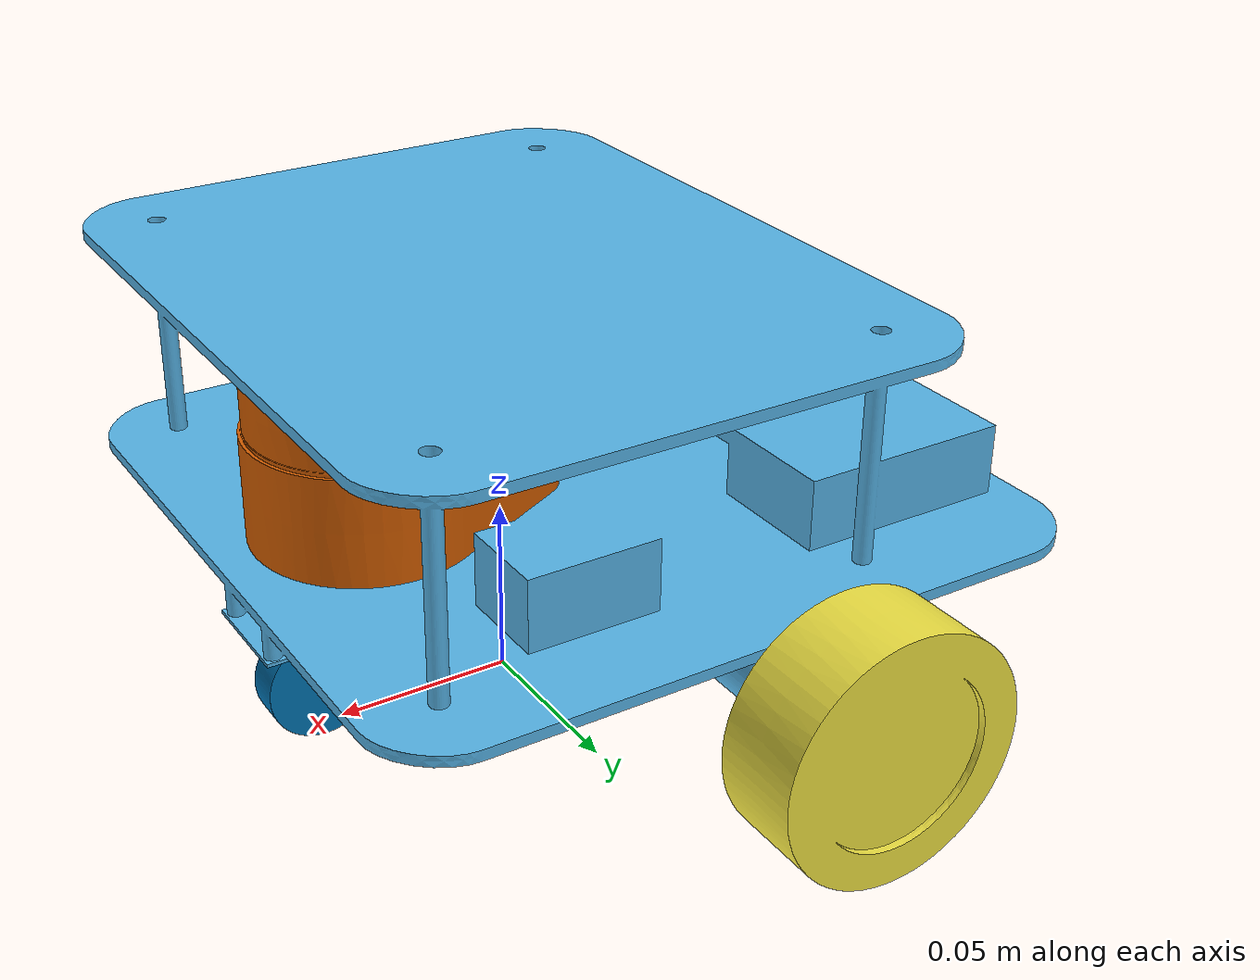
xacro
<?xml version="1.0"?>

<robot name="roverlad" xmlns:xacro="http://ros.org/wiki/xacro">

  <!-- Load Simulated or Real Hardware Interfaces -->
  <xacro:arg name="is_sim" default="false"/>

  <xacro:include filename="$(find roverlad_description)/urdf/roverlad_gazebo.xacro" />

  <xacro:include filename="$(find roverlad_description)/urdf/roverlad_ros2_control.xacro" />

  <link name="base_footprint"/>

  <link name="base_link">
    <inertial>
      <origin xyz="0 0 0" rpy="0.0 0.25 0.3" />
      <mass value="8.2573504e-01"/>
      <inertia ixx="2.2124416e-02" ixy="-1.2294101e-04" ixz="3.4938785e-04"
               iyy="2.1193702e-02" iyz="-5.0120904e-05"
               izz="2.0064271e-02" />
    </inertial>
    <visual>
      <origin xyz="0 0 -0.04" rpy="0 0 0" />
      <geometry>
        <mesh filename="package://roverlad_description/meshes/MainFrame.stl" />
      </geometry>
    </visual>
    <collision>
      <origin xyz="0 0 -0.04" rpy="0 0 0" />
      <geometry>
        <mesh filename="package://roverlad_description/meshes/MainFrame.stl" />
      </geometry>
    </collision>
  </link>

  <joint name="base_joint" type="fixed">
    <parent link="base_footprint"/>
    <child link="base_link" />
    <origin xyz="0 0 0.04" rpy="0 0 0"/>
  </joint>

  <link name="wheel_right_link">
    <inertial>
      <origin xyz="0 -0.014 0" rpy="0 0 0" />
      <mass value="0.0530086090966721" />
      <inertia ixx="1.88176298336665E-05" ixy="-4.8444933029987E-10" ixz="1.88163708851143E-08"
               iyy="3.11510738647764E-05" iyz="-6.93560663069607E-11"
               izz="1.8801969558182E-05" />
    </inertial>
    <visual>
      <origin xyz="0.034 0.1 -0.0343" rpy="0 0 0" />
      <geometry>
        <mesh filename="package://roverlad_description/meshes/Wheel_L.stl" />
      </geometry>
    </visual>
    <collision>
      <origin xyz="0.034 0.1 -0.0343" rpy="0 0 0" />
      <geometry>
        <sphere radius="0.033"/>
      </geometry>
    </collision>
  </link>

  <joint name="wheel_right_joint" type="continuous">
    <origin xyz="-0.034 -0.1 -0.005" rpy="0 0 0" />
    <parent link="base_link" />
    <child link="wheel_right_link" />
    <axis xyz="0 1 0" />
  </joint>

  <link name="wheel_left_link">
    <inertial>
      <origin xyz="0 0.014 0" rpy="0 0 0" />
      <mass value="0.0530086043217644" />
      <inertia ixx="1.8792911368909E-05"  ixy="3.31256392204584E-10" ixz="-1.14082001662767E-08"
               iyy="3.11510738759073E-05" iyz="-3.60499245082192E-10"
               izz="1.88266886146847E-05" />
    </inertial>
    <visual>
      <origin xyz="0.034 -0.1 -0.0343" rpy="0 0 0" />
      <geometry>
        <mesh filename="package://roverlad_description/meshes/Wheel_R.stl" />
      </geometry>
    </visual>
    <collision>
      <origin xyz="0.034 -0.1 -0.0343" rpy="0 0 0" />
      <geometry>
        <sphere radius="0.033"/>
      </geometry>
    </collision>
  </link>

  <joint name="wheel_left_joint" type="continuous">
    <origin xyz="-0.034 0.1 -0.005" rpy="0 0 0" />
    <parent link="base_link" />
    <child link="wheel_left_link" />
    <axis xyz="0 1 0" />
  </joint>

  <link name="caster_front_link">
    <inertial>
      <origin xyz="3.89968128948481E-07 2.40073004698083E-07 0.00219173397061506" rpy="0 0 0" />
      <mass value="1.44379265037903E-06" />
      <inertia ixx="7.23075276010246E-11" ixy="-6.10956883467859E-16" ixz="2.22849693525031E-15"
               iyy="3.8713793085917E-11"  iyz="2.93909858781952E-15"
               izz="1.00967486676306E-10" />
    </inertial>
    <visual>
      <origin xyz="-0.055 0 -0.015" rpy="0 0 0" />
      <geometry>
        <mesh filename="package://roverlad_description/meshes/Caster.stl" />
      </geometry>
    </visual>
    <collision>
      <origin xyz="-0.055 0 -0.015" rpy="0 0 0" />
      <geometry>
        <sphere radius="0.005"/>
      </geometry>
    </collision>
  </link>

  <link name="laser_link">
    <inertial>
      <origin xyz="3.89968128948481E-07 2.40073004698083E-07 0.00219173397061506" rpy="0 0 0" />
      <mass value="1.44379265037903E-06" />
      <inertia ixx="7.23075276010246E-11" ixy="-6.10956883467859E-16" ixz="2.22849693525031E-15"
               iyy="3.8713793085917E-11"  iyz="2.93909858781952E-15"
               izz="1.00967486676306E-10" />
    </inertial>
    <visual>
      <origin xyz="-0.035 0 -0.1" rpy="0 0 0" />
      <geometry>
        <mesh filename="package://roverlad_description/meshes/LIDAR.stl" />
      </geometry>
    </visual>
  </link>

  <joint name="laser_joint" type="fixed">
    <origin xyz="0.04 0 0.06" rpy="0 0 0" />
    <parent link="base_link" />
    <child link="laser_link" />
    <axis xyz="0 0 0" />
  </joint>

  <joint name="caster_front_joint" type="fixed">
    <origin xyz="0.056 0 -0.025" rpy="0 0 0" />
    <parent link="base_link" />
    <child link="caster_front_link" />
    <axis xyz="0 0 0" />
  </joint>

</robot>
